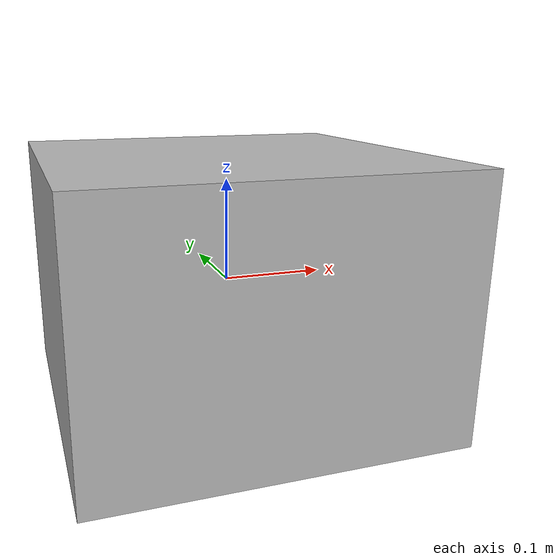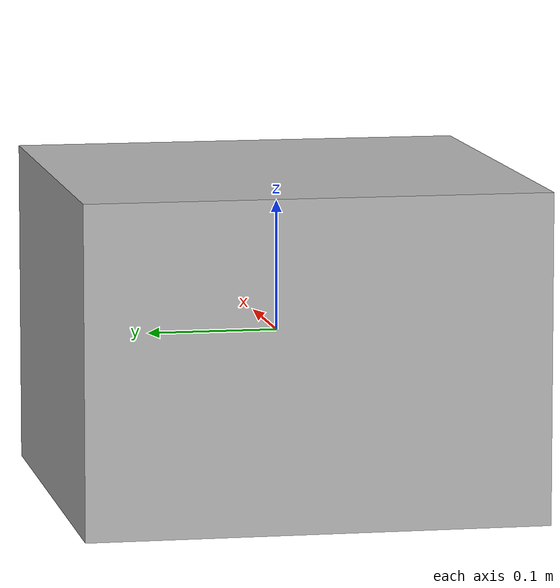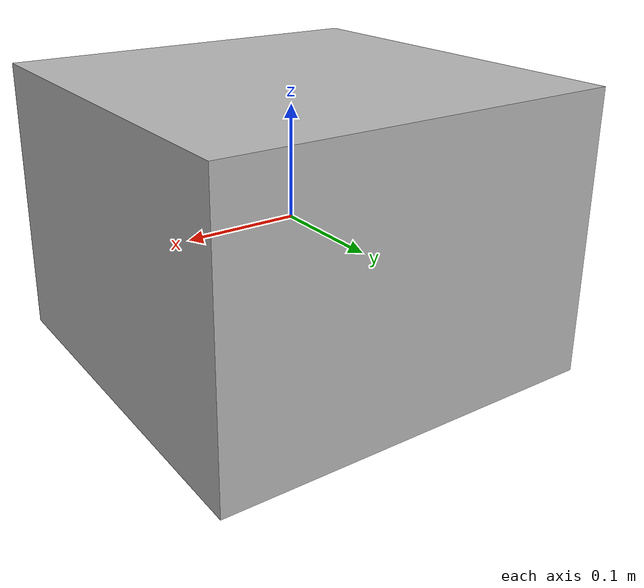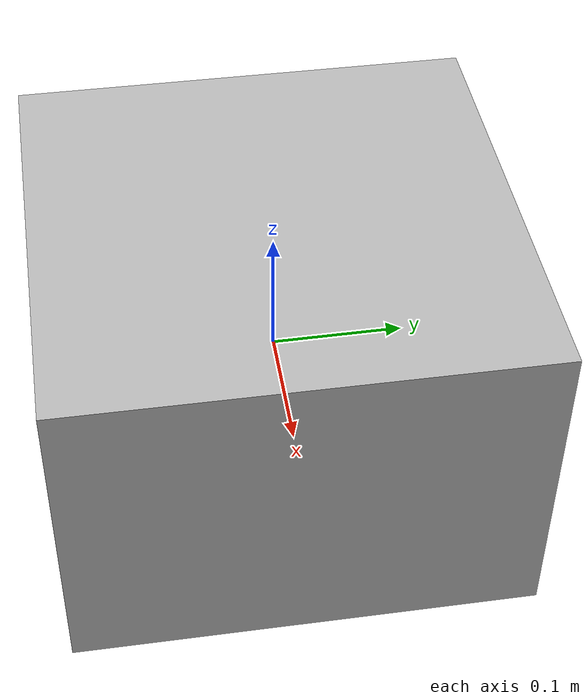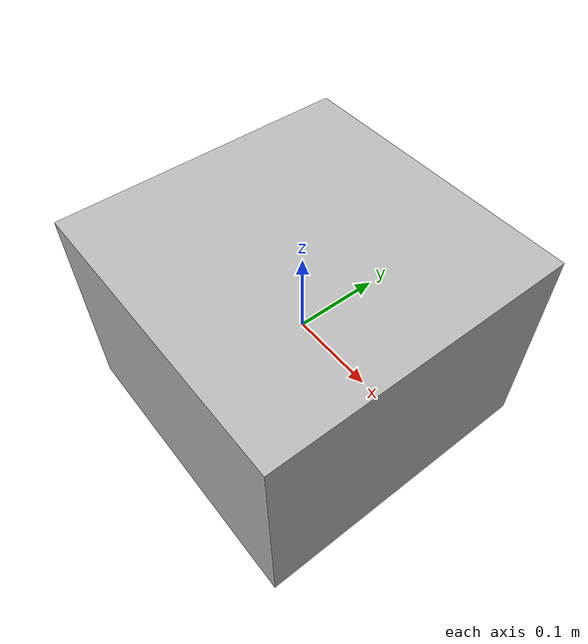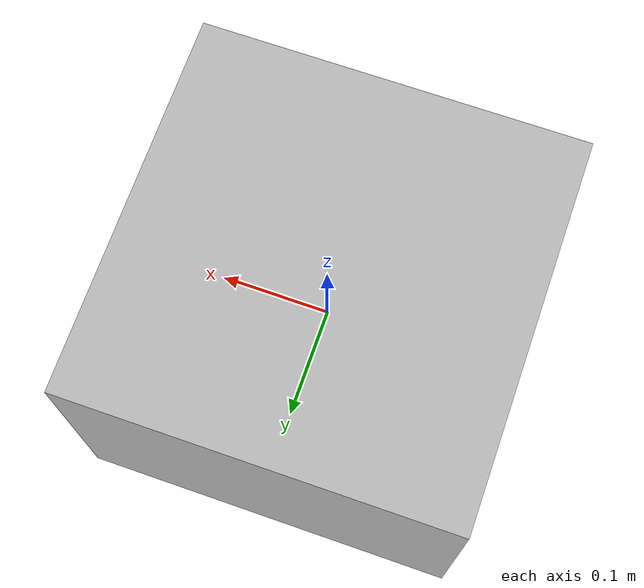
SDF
<sdf version="1.6">
  <model name="babyrov">

    <static>false</static>

    <link name="base_link">

      <inertial>
        <mass>8.5</mass>
        <inertia>
          <ixx>0.1</ixx>
          <iyy>0.1</iyy>
          <izz>0.1</izz>
        </inertia>
      </inertial>

      <collision name="collision">
        <geometry>
          <box>
            <size>0.35 0.35 0.25</size>
          </box>
        </geometry>
      </collision>

      <visual name="visual">
        <geometry>
          <box>
            <size>0.35 0.35 0.25</size>
          </box>
        </geometry>
      </visual>

    </link>

  </model>
</sdf>
